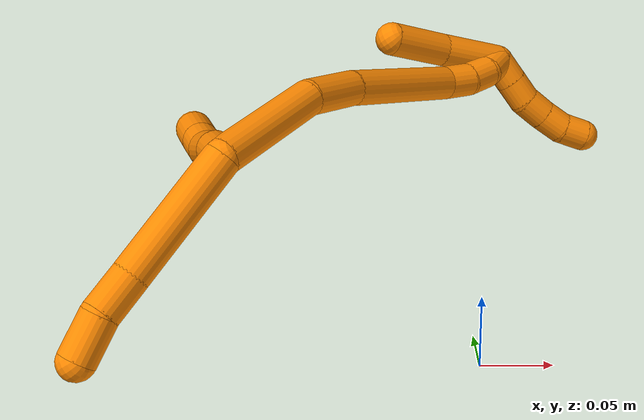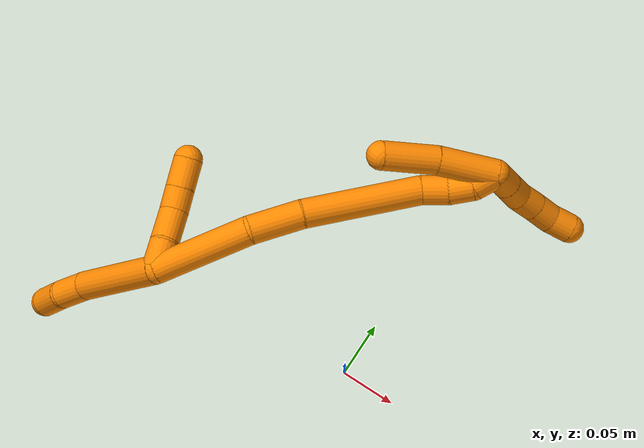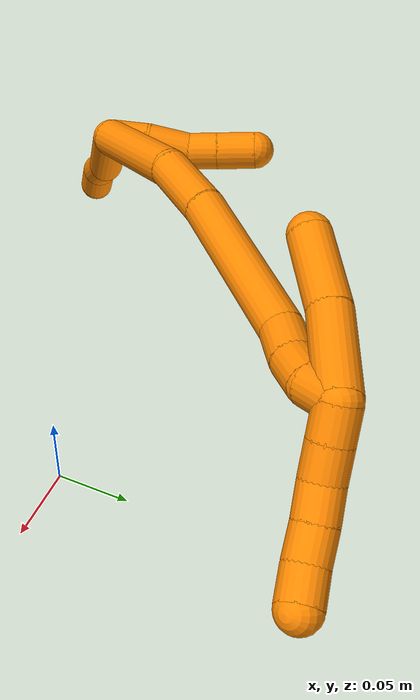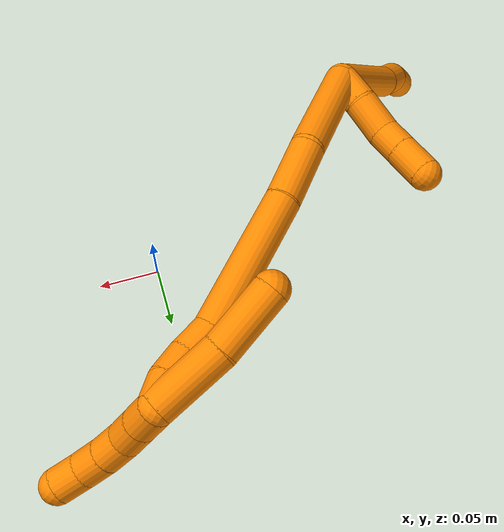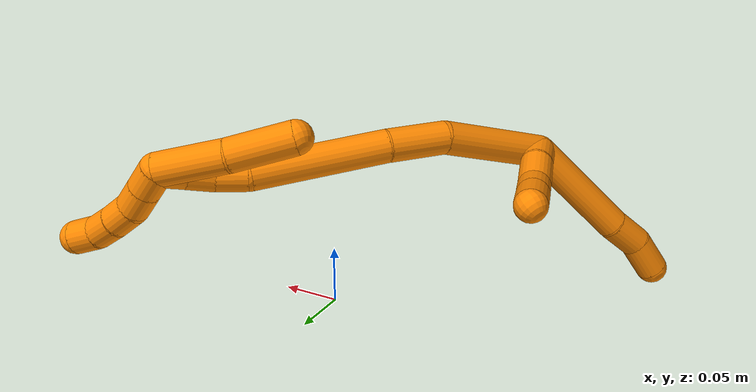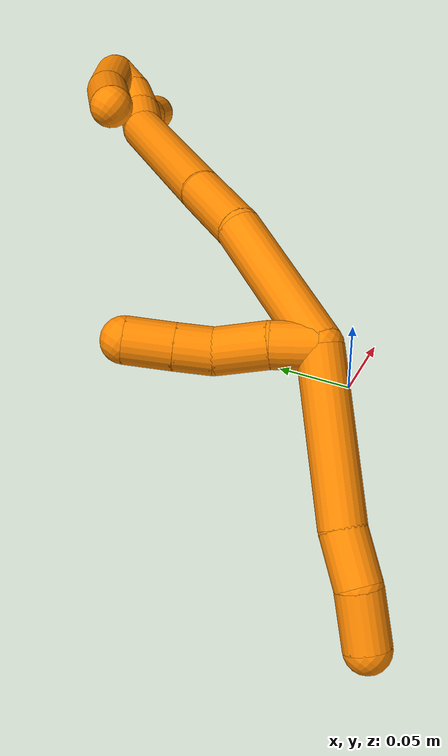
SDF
<sdf version="1.7">
 <world name="default">
  <model name="19">
   <static>0</static>
   <link name="19">
    <collision name="collision-cylinder-e_1_2_8">
     <pose>-0.017632 -0.026007 -0.032768 2.47072 -0.398876 -1.05087</pose>
     <geometry><cylinder><radius>0.0125</radius><length>0.090797</length></cylinder></geometry>
     <surface>
      <friction><ode><mu>1.16</mu><mu2>1.16</mu2><slip1>0</slip1><slip2>0</slip2></ode></friction>
      <contact><ode><kp>1e+06</kp><kd>1</kd><max_vel>0</max_vel><min_depth>0.001</min_depth></ode></contact>
     </surface>
    </collision>
    <visual name="visual-cylinder-e_1_2_8">
     <pose>-0.017632 -0.026007 -0.032768 2.47072 -0.398876 -1.05087</pose>
     <geometry><cylinder><radius>0.0125</radius><length>0.090797</length></cylinder></geometry>
     <material><ambient>0.996078 0.537255 0 1</ambient></material>
    </visual>
    <collision name="collision-cylinder-e_2_8_9">
     <pose>-0.042416 -0.060904 -0.074508 2.36078 -0.515261 -1.139</pose>
     <geometry><cylinder><radius>0.0125</radius><length>0.029029</length></cylinder></geometry>
     <surface>
      <friction><ode><mu>1.16</mu><mu2>1.16</mu2><slip1>0</slip1><slip2>0</slip2></ode></friction>
      <contact><ode><kp>1e+06</kp><kd>1</kd><max_vel>0</max_vel><min_depth>0.001</min_depth></ode></contact>
     </surface>
    </collision>
    <visual name="visual-cylinder-e_2_8_9">
     <pose>-0.042416 -0.060904 -0.074508 2.36078 -0.515261 -1.139</pose>
     <geometry><cylinder><radius>0.0125</radius><length>0.029029</length></cylinder></geometry>
     <material><ambient>0.996078 0.537255 0 1</ambient></material>
    </visual>
    <collision name="collision-cylinder-e_3_9_6">
     <pose>-0.053093 -0.080236 -0.093783 2.3495 -0.235822 -0.552136</pose>
     <geometry><cylinder><radius>0.0125</radius><length>0.030174</length></cylinder></geometry>
     <surface>
      <friction><ode><mu>1.16</mu><mu2>1.16</mu2><slip1>0</slip1><slip2>0</slip2></ode></friction>
      <contact><ode><kp>1e+06</kp><kd>1</kd><max_vel>0</max_vel><min_depth>0.001</min_depth></ode></contact>
     </surface>
    </collision>
    <visual name="visual-cylinder-e_3_9_6">
     <pose>-0.053093 -0.080236 -0.093783 2.3495 -0.235822 -0.552136</pose>
     <geometry><cylinder><radius>0.0125</radius><length>0.030174</length></cylinder></geometry>
     <material><ambient>0.996078 0.537255 0 1</ambient></material>
    </visual>
    <collision name="collision-cylinder-e_1_2_10">
     <pose>0.006993 0.00739 -0.006977 -2.32743 0.602696 -1.2492</pose>
     <geometry><cylinder><radius>0.0125</radius><length>0.024674</length></cylinder></geometry>
     <surface>
      <friction><ode><mu>1.16</mu><mu2>1.16</mu2><slip1>0</slip1><slip2>0</slip2></ode></friction>
      <contact><ode><kp>1e+06</kp><kd>1</kd><max_vel>0</max_vel><min_depth>0.001</min_depth></ode></contact>
     </surface>
    </collision>
    <visual name="visual-cylinder-e_1_2_10">
     <pose>0.006993 0.00739 -0.006977 -2.32743 0.602696 -1.2492</pose>
     <geometry><cylinder><radius>0.0125</radius><length>0.024674</length></cylinder></geometry>
     <material><ambient>0.996078 0.537255 0 1</ambient></material>
    </visual>
    <collision name="collision-cylinder-e_2_10_11">
     <pose>0.022569 0.021582 -0.023468 -2.521 0.633062 -1.59205</pose>
     <geometry><cylinder><radius>0.0125</radius><length>0.029013</length></cylinder></geometry>
     <surface>
      <friction><ode><mu>1.16</mu><mu2>1.16</mu2><slip1>0</slip1><slip2>0</slip2></ode></friction>
      <contact><ode><kp>1e+06</kp><kd>1</kd><max_vel>0</max_vel><min_depth>0.001</min_depth></ode></contact>
     </surface>
    </collision>
    <visual name="visual-cylinder-e_2_10_11">
     <pose>0.022569 0.021582 -0.023468 -2.521 0.633062 -1.59205</pose>
     <geometry><cylinder><radius>0.0125</radius><length>0.029013</length></cylinder></geometry>
     <material><ambient>0.996078 0.537255 0 1</ambient></material>
    </visual>
    <collision name="collision-cylinder-e_3_11_12">
     <pose>0.036308 0.035513 -0.038163 -2.19899 0.529424 -0.977729</pose>
     <geometry><cylinder><radius>0.0125</radius><length>0.020423</length></cylinder></geometry>
     <surface>
      <friction><ode><mu>1.16</mu><mu2>1.16</mu2><slip1>0</slip1><slip2>0</slip2></ode></friction>
      <contact><ode><kp>1e+06</kp><kd>1</kd><max_vel>0</max_vel><min_depth>0.001</min_depth></ode></contact>
     </surface>
    </collision>
    <visual name="visual-cylinder-e_3_11_12">
     <pose>0.036308 0.035513 -0.038163 -2.19899 0.529424 -0.977729</pose>
     <geometry><cylinder><radius>0.0125</radius><length>0.020423</length></cylinder></geometry>
     <material><ambient>0.996078 0.537255 0 1</ambient></material>
    </visual>
    <collision name="collision-cylinder-e_4_12_5">
     <pose>0.04807 0.051779 -0.049708 -2.17948 0.535381 -0.967639</pose>
     <geometry><cylinder><radius>0.0125</radius><length>0.02589</length></cylinder></geometry>
     <surface>
      <friction><ode><mu>1.16</mu><mu2>1.16</mu2><slip1>0</slip1><slip2>0</slip2></ode></friction>
      <contact><ode><kp>1e+06</kp><kd>1</kd><max_vel>0</max_vel><min_depth>0.001</min_depth></ode></contact>
     </surface>
    </collision>
    <visual name="visual-cylinder-e_4_12_5">
     <pose>0.04807 0.051779 -0.049708 -2.17948 0.535381 -0.967639</pose>
     <geometry><cylinder><radius>0.0125</radius><length>0.02589</length></cylinder></geometry>
     <material><ambient>0.996078 0.537255 0 1</ambient></material>
    </visual>
    <collision name="collision-cylinder-e_1_2_13">
     <pose>0.035317 0.020124 0.014994 -0.930454 0.952999 -0.507059</pose>
     <geometry><cylinder><radius>0.0125</radius><length>0.086651</length></cylinder></geometry>
     <surface>
      <friction><ode><mu>1.16</mu><mu2>1.16</mu2><slip1>0</slip1><slip2>0</slip2></ode></friction>
      <contact><ode><kp>1e+06</kp><kd>1</kd><max_vel>0</max_vel><min_depth>0.001</min_depth></ode></contact>
     </surface>
    </collision>
    <visual name="visual-cylinder-e_1_2_13">
     <pose>0.035317 0.020124 0.014994 -0.930454 0.952999 -0.507059</pose>
     <geometry><cylinder><radius>0.0125</radius><length>0.086651</length></cylinder></geometry>
     <material><ambient>0.996078 0.537255 0 1</ambient></material>
    </visual>
    <collision name="collision-cylinder-e_2_13_14">
     <pose>0.092166 0.045736 0.03511 -0.819795 1.23535 -0.598799</pose>
     <geometry><cylinder><radius>0.0125</radius><length>0.045606</length></cylinder></geometry>
     <surface>
      <friction><ode><mu>1.16</mu><mu2>1.16</mu2><slip1>0</slip1><slip2>0</slip2></ode></friction>
      <contact><ode><kp>1e+06</kp><kd>1</kd><max_vel>0</max_vel><min_depth>0.001</min_depth></ode></contact>
     </surface>
    </collision>
    <visual name="visual-cylinder-e_2_13_14">
     <pose>0.092166 0.045736 0.03511 -0.819795 1.23535 -0.598799</pose>
     <geometry><cylinder><radius>0.0125</radius><length>0.045606</length></cylinder></geometry>
     <material><ambient>0.996078 0.537255 0 1</ambient></material>
    </visual>
    <collision name="collision-cylinder-e_3_14_15">
     <pose>0.162891 0.057407 0.052325 -0.472717 1.30141 -0.362715</pose>
     <geometry><cylinder><radius>0.0125</radius><length>0.102065</length></cylinder></geometry>
     <surface>
      <friction><ode><mu>1.16</mu><mu2>1.16</mu2><slip1>0</slip1><slip2>0</slip2></ode></friction>
      <contact><ode><kp>1e+06</kp><kd>1</kd><max_vel>0</max_vel><min_depth>0.001</min_depth></ode></contact>
     </surface>
    </collision>
    <visual name="visual-cylinder-e_3_14_15">
     <pose>0.162891 0.057407 0.052325 -0.472717 1.30141 -0.362715</pose>
     <geometry><cylinder><radius>0.0125</radius><length>0.102065</length></cylinder></geometry>
     <material><ambient>0.996078 0.537255 0 1</ambient></material>
    </visual>
    <collision name="collision-cylinder-e_4_15_16">
     <pose>0.222385 0.064257 0.069933 -0.120298 1.07617 -0.071853</pose>
     <geometry><cylinder><radius>0.0125</radius><length>0.02341</length></cylinder></geometry>
     <surface>
      <friction><ode><mu>1.16</mu><mu2>1.16</mu2><slip1>0</slip1><slip2>0</slip2></ode></friction>
      <contact><ode><kp>1e+06</kp><kd>1</kd><max_vel>0</max_vel><min_depth>0.001</min_depth></ode></contact>
     </surface>
    </collision>
    <visual name="visual-cylinder-e_4_15_16">
     <pose>0.222385 0.064257 0.069933 -0.120298 1.07617 -0.071853</pose>
     <geometry><cylinder><radius>0.0125</radius><length>0.02341</length></cylinder></geometry>
     <material><ambient>0.996078 0.537255 0 1</ambient></material>
    </visual>
    <collision name="collision-cylinder-e_5_16_17">
     <pose>0.241708 0.067773 0.080295 -0.531476 1.01352 -0.299908</pose>
     <geometry><cylinder><radius>0.0125</radius><length>0.021259</length></cylinder></geometry>
     <surface>
      <friction><ode><mu>1.16</mu><mu2>1.16</mu2><slip1>0</slip1><slip2>0</slip2></ode></friction>
      <contact><ode><kp>1e+06</kp><kd>1</kd><max_vel>0</max_vel><min_depth>0.001</min_depth></ode></contact>
     </surface>
    </collision>
    <visual name="visual-cylinder-e_5_16_17">
     <pose>0.241708 0.067773 0.080295 -0.531476 1.01352 -0.299908</pose>
     <geometry><cylinder><radius>0.0125</radius><length>0.021259</length></cylinder></geometry>
     <material><ambient>0.996078 0.537255 0 1</ambient></material>
    </visual>
    <collision name="collision-cylinder-e_6_17_1">
     <pose>0.259281 0.076096 0.087832 -1.11399 0.951269 -0.62081</pose>
     <geometry><cylinder><radius>0.0125</radius><length>0.021009</length></cylinder></geometry>
     <surface>
      <friction><ode><mu>1.16</mu><mu2>1.16</mu2><slip1>0</slip1><slip2>0</slip2></ode></friction>
      <contact><ode><kp>1e+06</kp><kd>1</kd><max_vel>0</max_vel><min_depth>0.001</min_depth></ode></contact>
     </surface>
    </collision>
    <visual name="visual-cylinder-e_6_17_1">
     <pose>0.259281 0.076096 0.087832 -1.11399 0.951269 -0.62081</pose>
     <geometry><cylinder><radius>0.0125</radius><length>0.021009</length></cylinder></geometry>
     <material><ambient>0.996078 0.537255 0 1</ambient></material>
    </visual>
    <collision name="collision-cylinder-e_1_1_18">
     <pose>0.245221 0.087713 0.079649 -2.62732 -1.06621 2.30319</pose>
     <geometry><cylinder><radius>0.0125</radius><length>0.051663</length></cylinder></geometry>
     <surface>
      <friction><ode><mu>1.16</mu><mu2>1.16</mu2><slip1>0</slip1><slip2>0</slip2></ode></friction>
      <contact><ode><kp>1e+06</kp><kd>1</kd><max_vel>0</max_vel><min_depth>0.001</min_depth></ode></contact>
     </surface>
    </collision>
    <visual name="visual-cylinder-e_1_1_18">
     <pose>0.245221 0.087713 0.079649 -2.62732 -1.06621 2.30319</pose>
     <geometry><cylinder><radius>0.0125</radius><length>0.051663</length></cylinder></geometry>
     <material><ambient>0.996078 0.537255 0 1</ambient></material>
    </visual>
    <collision name="collision-cylinder-e_2_18_4">
     <pose>0.199986 0.097555 0.061118 -2.69163 -1.21122 2.50316</pose>
     <geometry><cylinder><radius>0.0125</radius><length>0.048337</length></cylinder></geometry>
     <surface>
      <friction><ode><mu>1.16</mu><mu2>1.16</mu2><slip1>0</slip1><slip2>0</slip2></ode></friction>
      <contact><ode><kp>1e+06</kp><kd>1</kd><max_vel>0</max_vel><min_depth>0.001</min_depth></ode></contact>
     </surface>
    </collision>
    <visual name="visual-cylinder-e_2_18_4">
     <pose>0.199986 0.097555 0.061118 -2.69163 -1.21122 2.50316</pose>
     <geometry><cylinder><radius>0.0125</radius><length>0.048337</length></cylinder></geometry>
     <material><ambient>0.996078 0.537255 0 1</ambient></material>
    </visual>
    <collision name="collision-cylinder-e_1_1_19">
     <pose>0.274289 0.07394 0.090209 1.61179 0.701766 0.728653</pose>
     <geometry><cylinder><radius>0.0125</radius><length>0.02</length></cylinder></geometry>
     <surface>
      <friction><ode><mu>1.16</mu><mu2>1.16</mu2><slip1>0</slip1><slip2>0</slip2></ode></friction>
      <contact><ode><kp>1e+06</kp><kd>1</kd><max_vel>0</max_vel><min_depth>0.001</min_depth></ode></contact>
     </surface>
    </collision>
    <visual name="visual-cylinder-e_1_1_19">
     <pose>0.274289 0.07394 0.090209 1.61179 0.701766 0.728653</pose>
     <geometry><cylinder><radius>0.0125</radius><length>0.02</length></cylinder></geometry>
     <material><ambient>0.996078 0.537255 0 1</ambient></material>
    </visual>
    <collision name="collision-cylinder-e_2_19_20">
     <pose>0.287199 0.058677 0.089584 1.61172 0.701495 0.728329</pose>
     <geometry><cylinder><radius>0.0125</radius><length>0.02</length></cylinder></geometry>
     <surface>
      <friction><ode><mu>1.16</mu><mu2>1.16</mu2><slip1>0</slip1><slip2>0</slip2></ode></friction>
      <contact><ode><kp>1e+06</kp><kd>1</kd><max_vel>0</max_vel><min_depth>0.001</min_depth></ode></contact>
     </surface>
    </collision>
    <visual name="visual-cylinder-e_2_19_20">
     <pose>0.287199 0.058677 0.089584 1.61172 0.701495 0.728329</pose>
     <geometry><cylinder><radius>0.0125</radius><length>0.02</length></cylinder></geometry>
     <material><ambient>0.996078 0.537255 0 1</ambient></material>
    </visual>
    <collision name="collision-cylinder-e_3_20_21">
     <pose>0.301117 0.044646 0.091098 1.29265 0.842692 0.652111</pose>
     <geometry><cylinder><radius>0.0125</radius><length>0.02</length></cylinder></geometry>
     <surface>
      <friction><ode><mu>1.16</mu><mu2>1.16</mu2><slip1>0</slip1><slip2>0</slip2></ode></friction>
      <contact><ode><kp>1e+06</kp><kd>1</kd><max_vel>0</max_vel><min_depth>0.001</min_depth></ode></contact>
     </surface>
    </collision>
    <visual name="visual-cylinder-e_3_20_21">
     <pose>0.301117 0.044646 0.091098 1.29265 0.842692 0.652111</pose>
     <geometry><cylinder><radius>0.0125</radius><length>0.02</length></cylinder></geometry>
     <material><ambient>0.996078 0.537255 0 1</ambient></material>
    </visual>
    <collision name="collision-cylinder-e_4_21_22">
     <pose>0.315746 0.0318 0.09559 1.1789 0.798829 0.550251</pose>
     <geometry><cylinder><radius>0.0125</radius><length>0.02</length></cylinder></geometry>
     <surface>
      <friction><ode><mu>1.16</mu><mu2>1.16</mu2><slip1>0</slip1><slip2>0</slip2></ode></friction>
      <contact><ode><kp>1e+06</kp><kd>1</kd><max_vel>0</max_vel><min_depth>0.001</min_depth></ode></contact>
     </surface>
    </collision>
    <visual name="visual-cylinder-e_4_21_22">
     <pose>0.315746 0.0318 0.09559 1.1789 0.798829 0.550251</pose>
     <geometry><cylinder><radius>0.0125</radius><length>0.02</length></cylinder></geometry>
     <material><ambient>0.996078 0.537255 0 1</ambient></material>
    </visual>
    <collision name="collision-cylinder-e_5_22_3">
     <pose>0.330583 0.020797 0.102768 0.790072 0.874409 0.384919</pose>
     <geometry><cylinder><radius>0.0125</radius><length>0.02</length></cylinder></geometry>
     <surface>
      <friction><ode><mu>1.16</mu><mu2>1.16</mu2><slip1>0</slip1><slip2>0</slip2></ode></friction>
      <contact><ode><kp>1e+06</kp><kd>1</kd><max_vel>0</max_vel><min_depth>0.001</min_depth></ode></contact>
     </surface>
    </collision>
    <visual name="visual-cylinder-e_5_22_3">
     <pose>0.330583 0.020797 0.102768 0.790072 0.874409 0.384919</pose>
     <geometry><cylinder><radius>0.0125</radius><length>0.02</length></cylinder></geometry>
     <material><ambient>0.996078 0.537255 0 1</ambient></material>
    </visual>
    <collision name="collision-sphere-3">
     <pose>0.338255 0.01624 0.107283 0 -0 0</pose>
     <geometry><sphere><radius>0.0125</radius></sphere></geometry>
     <surface>
      <friction><ode><mu>1.16</mu><mu2>1.16</mu2><slip1>0</slip1><slip2>0</slip2></ode></friction>
      <contact><ode><kp>1e+06</kp><kd>1</kd><max_vel>0</max_vel><min_depth>0.001</min_depth></ode></contact>
     </surface>
    </collision>
    <visual name="visual-sphere-3">
     <pose>0.338255 0.01624 0.107283 0 -0 0</pose>
     <geometry><sphere><radius>0.0125</radius></sphere></geometry>
     <material><ambient>0.996078 0.537255 0 1</ambient></material>
    </visual>
    <collision name="collision-sphere-22">
     <pose>0.322912 0.025353 0.098254 0 -0 0</pose>
     <geometry><sphere><radius>0.0125</radius></sphere></geometry>
     <surface>
      <friction><ode><mu>1.16</mu><mu2>1.16</mu2><slip1>0</slip1><slip2>0</slip2></ode></friction>
      <contact><ode><kp>1e+06</kp><kd>1</kd><max_vel>0</max_vel><min_depth>0.001</min_depth></ode></contact>
     </surface>
    </collision>
    <visual name="visual-sphere-22">
     <pose>0.322912 0.025353 0.098254 0 -0 0</pose>
     <geometry><sphere><radius>0.0125</radius></sphere></geometry>
     <material><ambient>0.996078 0.537255 0 1</ambient></material>
    </visual>
    <collision name="collision-sphere-21">
     <pose>0.308581 0.038247 0.092925 0 -0 0</pose>
     <geometry><sphere><radius>0.0125</radius></sphere></geometry>
     <surface>
      <friction><ode><mu>1.16</mu><mu2>1.16</mu2><slip1>0</slip1><slip2>0</slip2></ode></friction>
      <contact><ode><kp>1e+06</kp><kd>1</kd><max_vel>0</max_vel><min_depth>0.001</min_depth></ode></contact>
     </surface>
    </collision>
    <visual name="visual-sphere-21">
     <pose>0.308581 0.038247 0.092925 0 -0 0</pose>
     <geometry><sphere><radius>0.0125</radius></sphere></geometry>
     <material><ambient>0.996078 0.537255 0 1</ambient></material>
    </visual>
    <collision name="collision-sphere-20">
     <pose>0.293652 0.051044 0.089271 0 -0 0</pose>
     <geometry><sphere><radius>0.0125</radius></sphere></geometry>
     <surface>
      <friction><ode><mu>1.16</mu><mu2>1.16</mu2><slip1>0</slip1><slip2>0</slip2></ode></friction>
      <contact><ode><kp>1e+06</kp><kd>1</kd><max_vel>0</max_vel><min_depth>0.001</min_depth></ode></contact>
     </surface>
    </collision>
    <visual name="visual-sphere-20">
     <pose>0.293652 0.051044 0.089271 0 -0 0</pose>
     <geometry><sphere><radius>0.0125</radius></sphere></geometry>
     <material><ambient>0.996078 0.537255 0 1</ambient></material>
    </visual>
    <collision name="collision-sphere-19">
     <pose>0.280745 0.066309 0.089896 0 -0 0</pose>
     <geometry><sphere><radius>0.0125</radius></sphere></geometry>
     <surface>
      <friction><ode><mu>1.16</mu><mu2>1.16</mu2><slip1>0</slip1><slip2>0</slip2></ode></friction>
      <contact><ode><kp>1e+06</kp><kd>1</kd><max_vel>0</max_vel><min_depth>0.001</min_depth></ode></contact>
     </surface>
    </collision>
    <visual name="visual-sphere-19">
     <pose>0.280745 0.066309 0.089896 0 -0 0</pose>
     <geometry><sphere><radius>0.0125</radius></sphere></geometry>
     <material><ambient>0.996078 0.537255 0 1</ambient></material>
    </visual>
    <collision name="collision-sphere-11">
     <pose>0.031151 0.028383 -0.032983 0 -0 0</pose>
     <geometry><sphere><radius>0.0125</radius></sphere></geometry>
     <surface>
      <friction><ode><mu>1.16</mu><mu2>1.16</mu2><slip1>0</slip1><slip2>0</slip2></ode></friction>
      <contact><ode><kp>1e+06</kp><kd>1</kd><max_vel>0</max_vel><min_depth>0.001</min_depth></ode></contact>
     </surface>
    </collision>
    <visual name="visual-sphere-11">
     <pose>0.031151 0.028383 -0.032983 0 -0 0</pose>
     <geometry><sphere><radius>0.0125</radius></sphere></geometry>
     <material><ambient>0.996078 0.537255 0 1</ambient></material>
    </visual>
    <collision name="collision-sphere-10">
     <pose>0.013987 0.014781 -0.013954 0 -0 0</pose>
     <geometry><sphere><radius>0.0125</radius></sphere></geometry>
     <surface>
      <friction><ode><mu>1.16</mu><mu2>1.16</mu2><slip1>0</slip1><slip2>0</slip2></ode></friction>
      <contact><ode><kp>1e+06</kp><kd>1</kd><max_vel>0</max_vel><min_depth>0.001</min_depth></ode></contact>
     </surface>
    </collision>
    <visual name="visual-sphere-10">
     <pose>0.013987 0.014781 -0.013954 0 -0 0</pose>
     <geometry><sphere><radius>0.0125</radius></sphere></geometry>
     <material><ambient>0.996078 0.537255 0 1</ambient></material>
    </visual>
    <collision name="collision-sphere-6">
     <pose>-0.056618 -0.090678 -0.104086 0 -0 0</pose>
     <geometry><sphere><radius>0.0125</radius></sphere></geometry>
     <surface>
      <friction><ode><mu>1.16</mu><mu2>1.16</mu2><slip1>0</slip1><slip2>0</slip2></ode></friction>
      <contact><ode><kp>1e+06</kp><kd>1</kd><max_vel>0</max_vel><min_depth>0.001</min_depth></ode></contact>
     </surface>
    </collision>
    <visual name="visual-sphere-6">
     <pose>-0.056618 -0.090678 -0.104086 0 -0 0</pose>
     <geometry><sphere><radius>0.0125</radius></sphere></geometry>
     <material><ambient>0.996078 0.537255 0 1</ambient></material>
    </visual>
    <collision name="collision-sphere-9">
     <pose>-0.049568 -0.069794 -0.08348 0 -0 0</pose>
     <geometry><sphere><radius>0.0125</radius></sphere></geometry>
     <surface>
      <friction><ode><mu>1.16</mu><mu2>1.16</mu2><slip1>0</slip1><slip2>0</slip2></ode></friction>
      <contact><ode><kp>1e+06</kp><kd>1</kd><max_vel>0</max_vel><min_depth>0.001</min_depth></ode></contact>
     </surface>
    </collision>
    <visual name="visual-sphere-9">
     <pose>-0.049568 -0.069794 -0.08348 0 -0 0</pose>
     <geometry><sphere><radius>0.0125</radius></sphere></geometry>
     <material><ambient>0.996078 0.537255 0 1</ambient></material>
    </visual>
    <collision name="collision-sphere-2">
     <geometry><sphere><radius>0.0125</radius></sphere></geometry>
     <surface>
      <friction><ode><mu>1.16</mu><mu2>1.16</mu2><slip1>0</slip1><slip2>0</slip2></ode></friction>
      <contact><ode><kp>1e+06</kp><kd>1</kd><max_vel>0</max_vel><min_depth>0.001</min_depth></ode></contact>
     </surface>
    </collision>
    <visual name="visual-sphere-2">
     <geometry><sphere><radius>0.0125</radius></sphere></geometry>
     <material><ambient>0.996078 0.537255 0 1</ambient></material>
    </visual>
    <collision name="collision-sphere-8">
     <pose>-0.035264 -0.052015 -0.065536 0 -0 0</pose>
     <geometry><sphere><radius>0.0125</radius></sphere></geometry>
     <surface>
      <friction><ode><mu>1.16</mu><mu2>1.16</mu2><slip1>0</slip1><slip2>0</slip2></ode></friction>
      <contact><ode><kp>1e+06</kp><kd>1</kd><max_vel>0</max_vel><min_depth>0.001</min_depth></ode></contact>
     </surface>
    </collision>
    <visual name="visual-sphere-8">
     <pose>-0.035264 -0.052015 -0.065536 0 -0 0</pose>
     <geometry><sphere><radius>0.0125</radius></sphere></geometry>
     <material><ambient>0.996078 0.537255 0 1</ambient></material>
    </visual>
    <collision name="collision-sphere-12">
     <pose>0.041465 0.042644 -0.043342 0 -0 0</pose>
     <geometry><sphere><radius>0.0125</radius></sphere></geometry>
     <surface>
      <friction><ode><mu>1.16</mu><mu2>1.16</mu2><slip1>0</slip1><slip2>0</slip2></ode></friction>
      <contact><ode><kp>1e+06</kp><kd>1</kd><max_vel>0</max_vel><min_depth>0.001</min_depth></ode></contact>
     </surface>
    </collision>
    <visual name="visual-sphere-12">
     <pose>0.041465 0.042644 -0.043342 0 -0 0</pose>
     <geometry><sphere><radius>0.0125</radius></sphere></geometry>
     <material><ambient>0.996078 0.537255 0 1</ambient></material>
    </visual>
    <collision name="collision-sphere-5">
     <pose>0.054674 0.060913 -0.056074 0 -0 0</pose>
     <geometry><sphere><radius>0.0125</radius></sphere></geometry>
     <surface>
      <friction><ode><mu>1.16</mu><mu2>1.16</mu2><slip1>0</slip1><slip2>0</slip2></ode></friction>
      <contact><ode><kp>1e+06</kp><kd>1</kd><max_vel>0</max_vel><min_depth>0.001</min_depth></ode></contact>
     </surface>
    </collision>
    <visual name="visual-sphere-5">
     <pose>0.054674 0.060913 -0.056074 0 -0 0</pose>
     <geometry><sphere><radius>0.0125</radius></sphere></geometry>
     <material><ambient>0.996078 0.537255 0 1</ambient></material>
    </visual>
    <collision name="collision-sphere-13">
     <pose>0.070634 0.040248 0.029988 0 -0 0</pose>
     <geometry><sphere><radius>0.0125</radius></sphere></geometry>
     <surface>
      <friction><ode><mu>1.16</mu><mu2>1.16</mu2><slip1>0</slip1><slip2>0</slip2></ode></friction>
      <contact><ode><kp>1e+06</kp><kd>1</kd><max_vel>0</max_vel><min_depth>0.001</min_depth></ode></contact>
     </surface>
    </collision>
    <visual name="visual-sphere-13">
     <pose>0.070634 0.040248 0.029988 0 -0 0</pose>
     <geometry><sphere><radius>0.0125</radius></sphere></geometry>
     <material><ambient>0.996078 0.537255 0 1</ambient></material>
    </visual>
    <collision name="collision-sphere-14">
     <pose>0.113699 0.051223 0.040233 0 -0 0</pose>
     <geometry><sphere><radius>0.0125</radius></sphere></geometry>
     <surface>
      <friction><ode><mu>1.16</mu><mu2>1.16</mu2><slip1>0</slip1><slip2>0</slip2></ode></friction>
      <contact><ode><kp>1e+06</kp><kd>1</kd><max_vel>0</max_vel><min_depth>0.001</min_depth></ode></contact>
     </surface>
    </collision>
    <visual name="visual-sphere-14">
     <pose>0.113699 0.051223 0.040233 0 -0 0</pose>
     <geometry><sphere><radius>0.0125</radius></sphere></geometry>
     <material><ambient>0.996078 0.537255 0 1</ambient></material>
    </visual>
    <collision name="collision-sphere-15">
     <pose>0.212083 0.063591 0.064417 0 -0 0</pose>
     <geometry><sphere><radius>0.0125</radius></sphere></geometry>
     <surface>
      <friction><ode><mu>1.16</mu><mu2>1.16</mu2><slip1>0</slip1><slip2>0</slip2></ode></friction>
      <contact><ode><kp>1e+06</kp><kd>1</kd><max_vel>0</max_vel><min_depth>0.001</min_depth></ode></contact>
     </surface>
    </collision>
    <visual name="visual-sphere-15">
     <pose>0.212083 0.063591 0.064417 0 -0 0</pose>
     <geometry><sphere><radius>0.0125</radius></sphere></geometry>
     <material><ambient>0.996078 0.537255 0 1</ambient></material>
    </visual>
    <collision name="collision-sphere-16">
     <pose>0.232687 0.064924 0.075449 0 -0 0</pose>
     <geometry><sphere><radius>0.0125</radius></sphere></geometry>
     <surface>
      <friction><ode><mu>1.16</mu><mu2>1.16</mu2><slip1>0</slip1><slip2>0</slip2></ode></friction>
      <contact><ode><kp>1e+06</kp><kd>1</kd><max_vel>0</max_vel><min_depth>0.001</min_depth></ode></contact>
     </surface>
    </collision>
    <visual name="visual-sphere-16">
     <pose>0.232687 0.064924 0.075449 0 -0 0</pose>
     <geometry><sphere><radius>0.0125</radius></sphere></geometry>
     <material><ambient>0.996078 0.537255 0 1</ambient></material>
    </visual>
    <collision name="collision-sphere-17">
     <pose>0.250729 0.070622 0.085141 0 -0 0</pose>
     <geometry><sphere><radius>0.0125</radius></sphere></geometry>
     <surface>
      <friction><ode><mu>1.16</mu><mu2>1.16</mu2><slip1>0</slip1><slip2>0</slip2></ode></friction>
      <contact><ode><kp>1e+06</kp><kd>1</kd><max_vel>0</max_vel><min_depth>0.001</min_depth></ode></contact>
     </surface>
    </collision>
    <visual name="visual-sphere-17">
     <pose>0.250729 0.070622 0.085141 0 -0 0</pose>
     <geometry><sphere><radius>0.0125</radius></sphere></geometry>
     <material><ambient>0.996078 0.537255 0 1</ambient></material>
    </visual>
    <collision name="collision-sphere-1">
     <pose>0.267834 0.08157 0.090522 0 -0 0</pose>
     <geometry><sphere><radius>0.0125</radius></sphere></geometry>
     <surface>
      <friction><ode><mu>1.16</mu><mu2>1.16</mu2><slip1>0</slip1><slip2>0</slip2></ode></friction>
      <contact><ode><kp>1e+06</kp><kd>1</kd><max_vel>0</max_vel><min_depth>0.001</min_depth></ode></contact>
     </surface>
    </collision>
    <visual name="visual-sphere-1">
     <pose>0.267834 0.08157 0.090522 0 -0 0</pose>
     <geometry><sphere><radius>0.0125</radius></sphere></geometry>
     <material><ambient>0.996078 0.537255 0 1</ambient></material>
    </visual>
    <collision name="collision-sphere-18">
     <pose>0.222609 0.093856 0.068776 0 -0 0</pose>
     <geometry><sphere><radius>0.0125</radius></sphere></geometry>
     <surface>
      <friction><ode><mu>1.16</mu><mu2>1.16</mu2><slip1>0</slip1><slip2>0</slip2></ode></friction>
      <contact><ode><kp>1e+06</kp><kd>1</kd><max_vel>0</max_vel><min_depth>0.001</min_depth></ode></contact>
     </surface>
    </collision>
    <visual name="visual-sphere-18">
     <pose>0.222609 0.093856 0.068776 0 -0 0</pose>
     <geometry><sphere><radius>0.0125</radius></sphere></geometry>
     <material><ambient>0.996078 0.537255 0 1</ambient></material>
    </visual>
    <collision name="collision-sphere-4">
     <pose>0.177364 0.101254 0.053461 0 -0 0</pose>
     <geometry><sphere><radius>0.0125</radius></sphere></geometry>
     <surface>
      <friction><ode><mu>1.16</mu><mu2>1.16</mu2><slip1>0</slip1><slip2>0</slip2></ode></friction>
      <contact><ode><kp>1e+06</kp><kd>1</kd><max_vel>0</max_vel><min_depth>0.001</min_depth></ode></contact>
     </surface>
    </collision>
    <visual name="visual-sphere-4">
     <pose>0.177364 0.101254 0.053461 0 -0 0</pose>
     <geometry><sphere><radius>0.0125</radius></sphere></geometry>
     <material><ambient>0.996078 0.537255 0 1</ambient></material>
    </visual>
    <inertial>
     <pose>0.120766 0.032534 0.02533 0 -0 0</pose>
     <mass>0.75</mass>
     <inertia>
      <ixx>2.8e-05</ixx>
      <ixy>0</ixy>
      <ixz>0</ixz>
      <iyy>8.8e-05</iyy>
      <iyz>0</iyz>
      <izz>-0.000122</izz>
     </inertia>
    </inertial>
   </link>
   <pose>-0.166115 -0.037867 0.157995 0.92944 0.342215 0.930401</pose>
  </model>
 </world>
</sdf>
